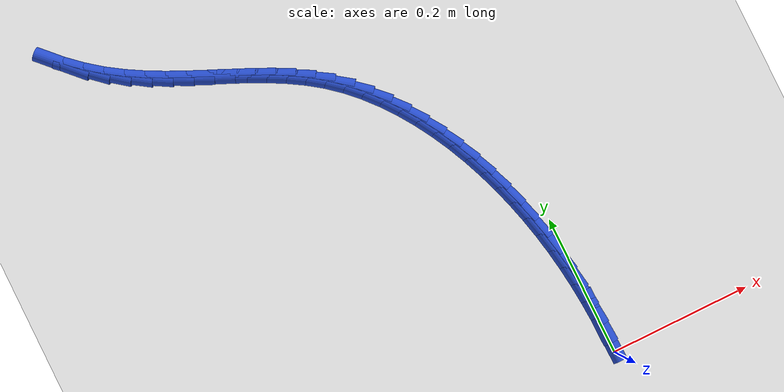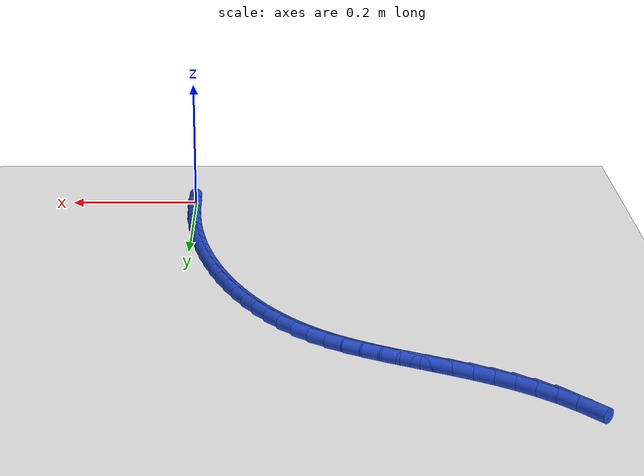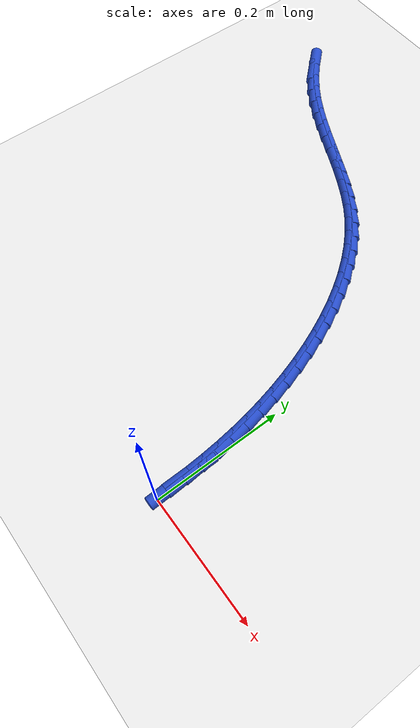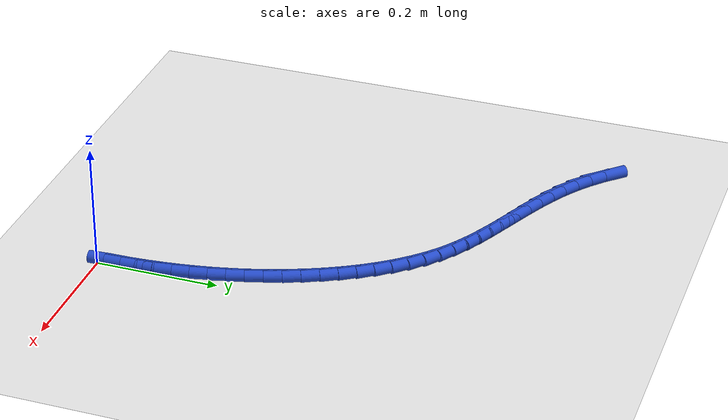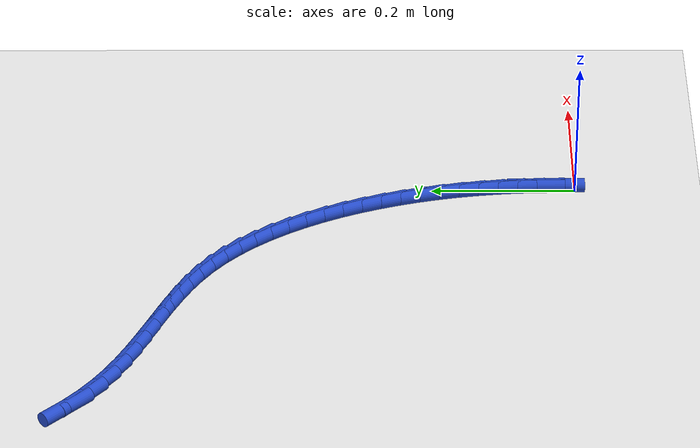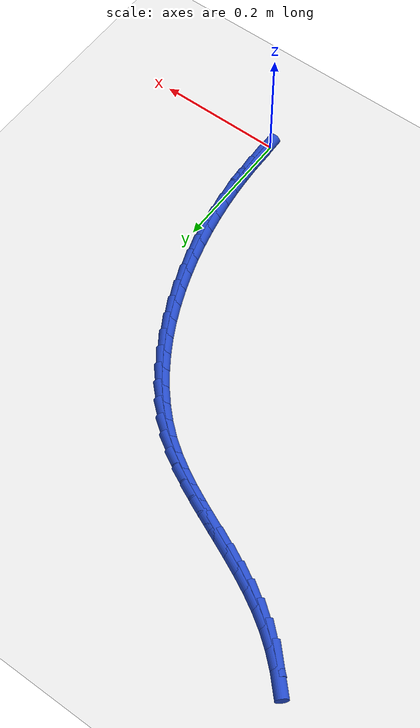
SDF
<sdf version="1.6">
 <world name="default">
  <model name="ground_plane">
   <static>1</static>
   <link name="link">
    <collision name="collision">
     <geometry><plane><normal>0 0 1</normal><size>100 100</size></plane></geometry>
     <surface><friction><ode><mu>100</mu><mu2>50</mu2></ode></friction></surface>
    </collision>
    <visual name="visual">
     <cast_shadows>0</cast_shadows>
     <geometry><plane><normal>0 0 1</normal><size>100 100</size></plane></geometry>
     <material>
      <script><uri>file://media/materials/scripts/gazebo.material</uri><name>Gazebo/WhiteGlow</name></script>
     </material>
    </visual>
   </link>
  </model>
  <model name="line">
   <link name="link_2">
    <pose>-0.0006548803368331179 0.054637220638812566 0.01 0 1.57 -1.514660698182164</pose>
    <collision name="collision">
     <geometry><cylinder><radius>0.01</radius><length>0.08</length></cylinder></geometry>
    </collision>
    <visual name="visual">
     <material>
      <script><name>Gazebo/Blue</name><uri>file://media/materials/scripts/gazebo.material</uri></script>
     </material>
     <geometry><cylinder><radius>0.01</radius><length>0.08</length></cylinder></geometry>
    </visual>
   </link>
   <link name="link_3">
    <pose>-0.0021904547829877177 0.08196320189536513 0.01 0 1.57 -1.4830975884616007</pose>
    <collision name="collision">
     <geometry><cylinder><radius>0.01</radius><length>0.08</length></cylinder></geometry>
    </collision>
    <visual name="visual">
     <material>
      <script><name>Gazebo/Blue</name><uri>file://media/materials/scripts/gazebo.material</uri></script>
     </material>
     <geometry><cylinder><radius>0.01</radius><length>0.08</length></cylinder></geometry>
    </visual>
   </link>
   <link name="link_4">
    <pose>-0.004593076593397466 0.10928924009065091 0.01 0 1.57 -1.450025670227744</pose>
    <collision name="collision">
     <geometry><cylinder><radius>0.01</radius><length>0.08</length></cylinder></geometry>
    </collision>
    <visual name="visual">
     <material>
      <script><name>Gazebo/Blue</name><uri>file://media/materials/scripts/gazebo.material</uri></script>
     </material>
     <geometry><cylinder><radius>0.01</radius><length>0.08</length></cylinder></geometry>
    </visual>
   </link>
   <link name="link_5">
    <pose>-0.007908964152384703 0.13661169246014668 0.01 0 1.57 -1.415536285359285</pose>
    <collision name="collision">
     <geometry><cylinder><radius>0.01</radius><length>0.08</length></cylinder></geometry>
    </collision>
    <visual name="visual">
     <material>
      <script><name>Gazebo/Blue</name><uri>file://media/materials/scripts/gazebo.material</uri></script>
     </material>
     <geometry><cylinder><radius>0.01</radius><length>0.08</length></cylinder></geometry>
    </visual>
   </link>
   <link name="link_6">
    <pose>-0.01218433584427178 0.16392691623932928 0.01 0 1.57 -1.379740339259799</pose>
    <collision name="collision">
     <geometry><cylinder><radius>0.01</radius><length>0.08</length></cylinder></geometry>
    </collision>
    <visual name="visual">
     <material>
      <script><name>Gazebo/Blue</name><uri>file://media/materials/scripts/gazebo.material</uri></script>
     </material>
     <geometry><cylinder><radius>0.01</radius><length>0.08</length></cylinder></geometry>
    </visual>
   </link>
   <link name="link_7">
    <pose>-0.017465410053381033 0.19123126866367549 0.01 0 1.57 -1.3427683134171196</pose>
    <collision name="collision">
     <geometry><cylinder><radius>0.01</radius><length>0.08</length></cylinder></geometry>
    </collision>
    <visual name="visual">
     <material>
      <script><name>Gazebo/Blue</name><uri>file://media/materials/scripts/gazebo.material</uri></script>
     </material>
     <geometry><cylinder><radius>0.01</radius><length>0.08</length></cylinder></geometry>
    </visual>
   </link>
   <link name="link_8">
    <pose>-0.023798405164034805 0.2185211069686621 0.01 0 1.57 -1.3047601957291866</pose>
    <collision name="collision">
     <geometry><cylinder><radius>0.01</radius><length>0.08</length></cylinder></geometry>
    </collision>
    <visual name="visual">
     <material>
      <script><name>Gazebo/Blue</name><uri>file://media/materials/scripts/gazebo.material</uri></script>
     </material>
     <geometry><cylinder><radius>0.01</radius><length>0.08</length></cylinder></geometry>
    </visual>
   </link>
   <link name="link_9">
    <pose>-0.031228597640717174 0.2457883378201303 0.01 0 1.57 -1.265589241247829</pose>
    <collision name="collision">
     <geometry><cylinder><radius>0.01</radius><length>0.08</length></cylinder></geometry>
    </collision>
    <visual name="visual">
     <material>
      <script><name>Gazebo/Blue</name><uri>file://media/materials/scripts/gazebo.material</uri></script>
     </material>
     <geometry><cylinder><radius>0.01</radius><length>0.08</length></cylinder></geometry>
    </visual>
   </link>
   <link name="link_10">
    <pose>-0.03978442922745219 0.27294532385834974 0.01 0 1.57 -1.2247531063989583</pose>
    <collision name="collision">
     <geometry><cylinder><radius>0.01</radius><length>0.08</length></cylinder></geometry>
    </collision>
    <visual name="visual">
     <material>
      <script><name>Gazebo/Blue</name><uri>file://media/materials/scripts/gazebo.material</uri></script>
     </material>
     <geometry><cylinder><radius>0.01</radius><length>0.08</length></cylinder></geometry>
    </visual>
   </link>
   <link name="link_11">
    <pose>-0.04947981975347978 0.2998358117009073 0.01 0 1.57 -1.181778552265423</pose>
    <collision name="collision">
     <geometry><cylinder><radius>0.01</radius><length>0.08</length></cylinder></geometry>
    </collision>
    <visual name="visual">
     <material>
      <script><name>Gazebo/Blue</name><uri>file://media/materials/scripts/gazebo.material</uri></script>
     </material>
     <geometry><cylinder><radius>0.01</radius><length>0.08</length></cylinder></geometry>
    </visual>
   </link>
   <link name="link_12">
    <pose>-0.06032821285854429 0.32630129797083257 0.01 0 1.57 -1.1361831632507438</pose>
    <collision name="collision">
     <geometry><cylinder><radius>0.01</radius><length>0.08</length></cylinder></geometry>
    </collision>
    <visual name="visual">
     <material>
      <script><name>Gazebo/Blue</name><uri>file://media/materials/scripts/gazebo.material</uri></script>
     </material>
     <geometry><cylinder><radius>0.01</radius><length>0.08</length></cylinder></geometry>
    </visual>
   </link>
   <link name="link_13">
    <pose>-0.07234305218239007 0.3521832792911548 0.01 0 1.57 -1.0874664741726738</pose>
    <collision name="collision">
     <geometry><cylinder><radius>0.01</radius><length>0.08</length></cylinder></geometry>
    </collision>
    <visual name="visual">
     <material>
      <script><name>Gazebo/Blue</name><uri>file://media/materials/scripts/gazebo.material</uri></script>
     </material>
     <geometry><cylinder><radius>0.01</radius><length>0.08</length></cylinder></geometry>
    </visual>
   </link>
   <link name="link_14">
    <pose>-0.08553778136476153 0.37732325228490365 0.01 0 1.57 -1.0351106886600607</pose>
    <collision name="collision">
     <geometry><cylinder><radius>0.01</radius><length>0.08</length></cylinder></geometry>
    </collision>
    <visual name="visual">
     <material>
      <script><name>Gazebo/Blue</name><uri>file://media/materials/scripts/gazebo.material</uri></script>
     </material>
     <geometry><cylinder><radius>0.01</radius><length>0.08</length></cylinder></geometry>
    </visual>
   </link>
   <link name="link_15">
    <pose>-0.099925844045403 0.4015627135751087 0.01 0 1.57 -0.9785882208468163</pose>
    <collision name="collision">
     <geometry><cylinder><radius>0.01</radius><length>0.08</length></cylinder></geometry>
    </collision>
    <visual name="visual">
     <material>
      <script><name>Gazebo/Blue</name><uri>file://media/materials/scripts/gazebo.material</uri></script>
     </material>
     <geometry><cylinder><radius>0.01</radius><length>0.08</length></cylinder></geometry>
    </visual>
   </link>
   <link name="link_16">
    <pose>-0.11552068386405884 0.4247431597847993 0.01 0 1.57 -0.9173787683518054</pose>
    <collision name="collision">
     <geometry><cylinder><radius>0.01</radius><length>0.08</length></cylinder></geometry>
    </collision>
    <visual name="visual">
     <material>
      <script><name>Gazebo/Blue</name><uri>file://media/materials/scripts/gazebo.material</uri></script>
     </material>
     <geometry><cylinder><radius>0.01</radius><length>0.08</length></cylinder></geometry>
    </visual>
   </link>
   <link name="link_17">
    <pose>-0.13233574446047347 0.44670608753700514 0.01 0 1.57 -0.8509992362033767</pose>
    <collision name="collision">
     <geometry><cylinder><radius>0.01</radius><length>0.08</length></cylinder></geometry>
    </collision>
    <visual name="visual">
     <material>
      <script><name>Gazebo/Blue</name><uri>file://media/materials/scripts/gazebo.material</uri></script>
     </material>
     <geometry><cylinder><radius>0.01</radius><length>0.08</length></cylinder></geometry>
    </visual>
   </link>
   <link name="link_18">
    <pose>-0.1503844694743911 0.46729299345475545 0.01 0 1.57 -0.7790497818089455</pose>
    <collision name="collision">
     <geometry><cylinder><radius>0.01</radius><length>0.08</length></cylinder></geometry>
    </collision>
    <visual name="visual">
     <material>
      <script><name>Gazebo/Blue</name><uri>file://media/materials/scripts/gazebo.material</uri></script>
     </material>
     <geometry><cylinder><radius>0.01</radius><length>0.08</length></cylinder></geometry>
    </visual>
   </link>
   <link name="link_19">
    <pose>-0.16968030254555638 0.48634537416108004 0.01 0 1.57 -0.7012777333331791</pose>
    <collision name="collision">
     <geometry><cylinder><radius>0.01</radius><length>0.08</length></cylinder></geometry>
    </collision>
    <visual name="visual">
     <material>
      <script><name>Gazebo/Blue</name><uri>file://media/materials/scripts/gazebo.material</uri></script>
     </material>
     <geometry><cylinder><radius>0.01</radius><length>0.08</length></cylinder></geometry>
    </visual>
   </link>
   <link name="link_20">
    <pose>-0.19023668731371335 0.5037047262790081 0.01 0 1.57 -0.6197250773368898</pose>
    <collision name="collision">
     <geometry><cylinder><radius>0.01</radius><length>0.08</length></cylinder></geometry>
    </collision>
    <visual name="visual">
     <material>
      <script><name>Gazebo/Blue</name><uri>file://media/materials/scripts/gazebo.material</uri></script>
     </material>
     <geometry><cylinder><radius>0.01</radius><length>0.08</length></cylinder></geometry>
    </visual>
   </link>
   <link name="link_21">
    <pose>-0.21204478315913225 0.5192646728340665 0.01 0 1.57 -0.5480218289737616</pose>
    <collision name="collision">
     <geometry><cylinder><radius>0.01</radius><length>0.08</length></cylinder></geometry>
    </collision>
    <visual name="visual">
     <material>
      <script><name>Gazebo/Blue</name><uri>file://media/materials/scripts/gazebo.material</uri></script>
     </material>
     <geometry><cylinder><radius>0.01</radius><length>0.08</length></cylinder></geometry>
    </visual>
   </link>
   <link name="link_22">
    <pose>-0.23495476489592204 0.5332486220192033 0.01 0 1.57 -0.49201042065135026</pose>
    <collision name="collision">
     <geometry><cylinder><radius>0.01</radius><length>0.08</length></cylinder></geometry>
    </collision>
    <visual name="visual">
     <material>
      <script><name>Gazebo/Blue</name><uri>file://media/materials/scripts/gazebo.material</uri></script>
     </material>
     <geometry><cylinder><radius>0.01</radius><length>0.08</length></cylinder></geometry>
    </visual>
   </link>
   <link name="link_23">
    <pose>-0.2587618331711567 0.5460085752867061 0.01 0 1.57 -0.45177811308489957</pose>
    <collision name="collision">
     <geometry><cylinder><radius>0.01</radius><length>0.08</length></cylinder></geometry>
    </collision>
    <visual name="visual">
     <material>
      <script><name>Gazebo/Blue</name><uri>file://media/materials/scripts/gazebo.material</uri></script>
     </material>
     <geometry><cylinder><radius>0.01</radius><length>0.08</length></cylinder></geometry>
    </visual>
   </link>
   <link name="link_24">
    <pose>-0.2832610637119321 0.5578968262964243 0.01 0 1.57 -0.42700411538172706</pose>
    <collision name="collision">
     <geometry><cylinder><radius>0.01</radius><length>0.08</length></cylinder></geometry>
    </collision>
    <visual name="visual">
     <material>
      <script><name>Gazebo/Blue</name><uri>file://media/materials/scripts/gazebo.material</uri></script>
     </material>
     <geometry><cylinder><radius>0.01</radius><length>0.08</length></cylinder></geometry>
    </visual>
   </link>
   <link name="link_25">
    <pose>-0.3082475322453435 0.5692656687082064 0.01 0 1.57 -0.41727077731692036</pose>
    <collision name="collision">
     <geometry><cylinder><radius>0.01</radius><length>0.08</length></cylinder></geometry>
    </collision>
    <visual name="visual">
     <material>
      <script><name>Gazebo/Blue</name><uri>file://media/materials/scripts/gazebo.material</uri></script>
     </material>
     <geometry><cylinder><radius>0.01</radius><length>0.08</length></cylinder></geometry>
    </visual>
   </link>
   <link name="link_26">
    <pose>-0.33351631449848634 0.5804673961819007 0.01 0 1.57 -0.42223459912199657</pose>
    <collision name="collision">
     <geometry><cylinder><radius>0.01</radius><length>0.08</length></cylinder></geometry>
    </collision>
    <visual name="visual">
     <material>
      <script><name>Gazebo/Blue</name><uri>file://media/materials/scripts/gazebo.material</uri></script>
     </material>
     <geometry><cylinder><radius>0.01</radius><length>0.08</length></cylinder></geometry>
    </visual>
   </link>
   <link name="link_27">
    <pose>-0.35886248619845623 0.5918543023773565 0.01 0 1.57 -0.4416844410322147</pose>
    <collision name="collision">
     <geometry><cylinder><radius>0.01</radius><length>0.08</length></cylinder></geometry>
    </collision>
    <visual name="visual">
     <material>
      <script><name>Gazebo/Blue</name><uri>file://media/materials/scripts/gazebo.material</uri></script>
     </material>
     <geometry><cylinder><radius>0.01</radius><length>0.08</length></cylinder></geometry>
    </visual>
   </link>
   <link name="link_28">
    <pose>-0.38408112307234854 0.6037786809544221 0.01 0 1.57 -0.4755044261012351</pose>
    <collision name="collision">
     <geometry><cylinder><radius>0.01</radius><length>0.08</length></cylinder></geometry>
    </collision>
    <visual name="visual">
     <material>
      <script><name>Gazebo/Blue</name><uri>file://media/materials/scripts/gazebo.material</uri></script>
     </material>
     <geometry><cylinder><radius>0.01</radius><length>0.08</length></cylinder></geometry>
    </visual>
   </link>
   <link name="link_29">
    <pose>-0.40896730084725863 0.6165928255729463 0.01 0 1.57 -0.5235501470863834</pose>
    <collision name="collision">
     <geometry><cylinder><radius>0.01</radius><length>0.08</length></cylinder></geometry>
    </collision>
    <visual name="visual">
     <material>
      <script><name>Gazebo/Blue</name><uri>file://media/materials/scripts/gazebo.material</uri></script>
     </material>
     <geometry><cylinder><radius>0.01</radius><length>0.08</length></cylinder></geometry>
    </visual>
   </link>
   <link name="link_30">
    <pose>-0.43331609525028225 0.6306490298927778 0.01 0 1.57 -0.5854405013461872</pose>
    <collision name="collision">
     <geometry><cylinder><radius>0.01</radius><length>0.08</length></cylinder></geometry>
    </collision>
    <visual name="visual">
     <material>
      <script><name>Gazebo/Blue</name><uri>file://media/materials/scripts/gazebo.material</uri></script>
     </material>
     <geometry><cylinder><radius>0.01</radius><length>0.08</length></cylinder></geometry>
    </visual>
   </link>
   <link name="link_31">
    <pose>-0.4569225730068366 0.6462994673175655 0.01 0 1.57 -0.6572251262831328</pose>
    <collision name="collision">
     <geometry><cylinder><radius>0.01</radius><length>0.08</length></cylinder></geometry>
    </collision>
    <visual name="visual">
     <material>
      <script><name>Gazebo/Blue</name><uri>file://media/materials/scripts/gazebo.material</uri></script>
     </material>
     <geometry><cylinder><radius>0.01</radius><length>0.08</length></cylinder></geometry>
    </visual>
   </link>
   <link name="link_32">
    <pose>-0.47957294778653214 0.6637780405391416 0.01 0 1.57 -0.7300106650848863</pose>
    <collision name="collision">
     <geometry><cylinder><radius>0.01</radius><length>0.08</length></cylinder></geometry>
    </collision>
    <visual name="visual">
     <material>
      <script><name>Gazebo/Blue</name><uri>file://media/materials/scripts/gazebo.material</uri></script>
     </material>
     <geometry><cylinder><radius>0.01</radius><length>0.08</length></cylinder></geometry>
    </visual>
   </link>
   <link name="link_33">
    <pose>-0.5010280058938634 0.6829789602111047 0.01 0 1.57 -0.8035669912949912</pose>
    <collision name="collision">
     <geometry><cylinder><radius>0.01</radius><length>0.08</length></cylinder></geometry>
    </collision>
    <visual name="visual">
     <material>
      <script><name>Gazebo/Blue</name><uri>file://media/materials/scripts/gazebo.material</uri></script>
     </material>
     <geometry><cylinder><radius>0.01</radius><length>0.08</length></cylinder></geometry>
    </visual>
   </link>
   <link name="link_271">
    <pose>6.31585331784582e-05 0.02731624012896294 0.01 0 1.57 -1.5454941356109004</pose>
    <collision name="collision">
     <geometry><cylinder><radius>0.01</radius><length>0.08</length></cylinder></geometry>
    </collision>
    <visual name="visual">
     <material>
      <script><name>Gazebo/Blue</name><uri>file://media/materials/scripts/gazebo.material</uri></script>
     </material>
     <geometry><cylinder><radius>0.01</radius><length>0.08</length></cylinder></geometry>
    </visual>
   </link>
   <link name="link_272">
    <pose>-0.0006285331065148461 0.054647628986380765 0.01 0 1.57 -1.5592952716712052</pose>
    <collision name="collision">
     <geometry><cylinder><radius>0.01</radius><length>0.08</length></cylinder></geometry>
    </collision>
    <visual name="visual">
     <material>
      <script><name>Gazebo/Blue</name><uri>file://media/materials/scripts/gazebo.material</uri></script>
     </material>
     <geometry><cylinder><radius>0.01</radius><length>0.08</length></cylinder></geometry>
    </visual>
   </link>
  </model>
 </world>
</sdf>
